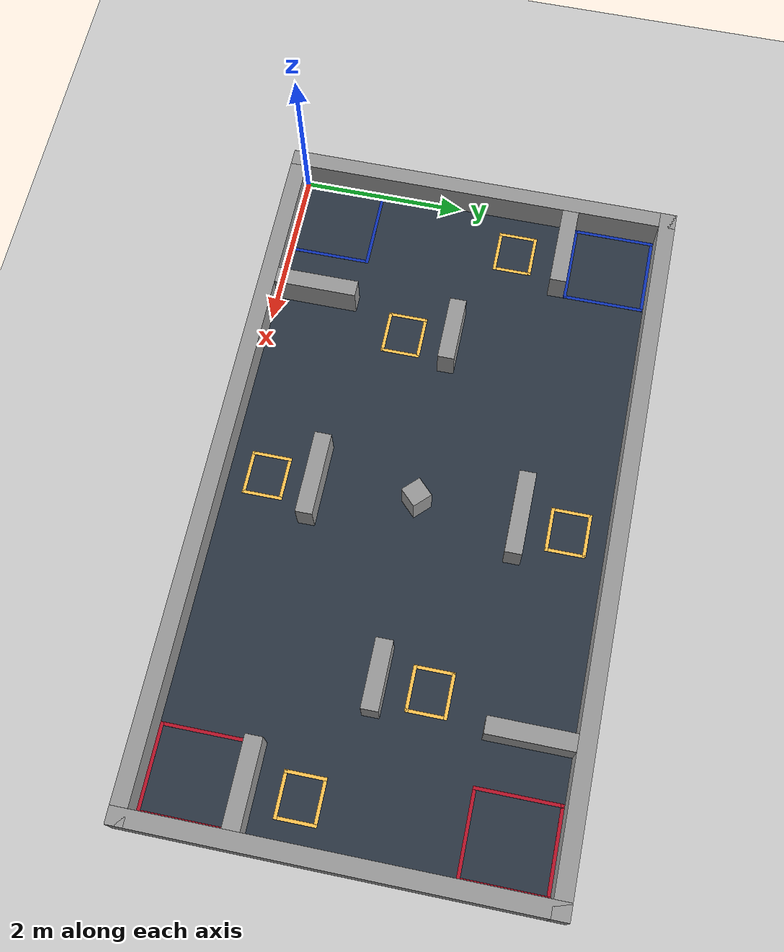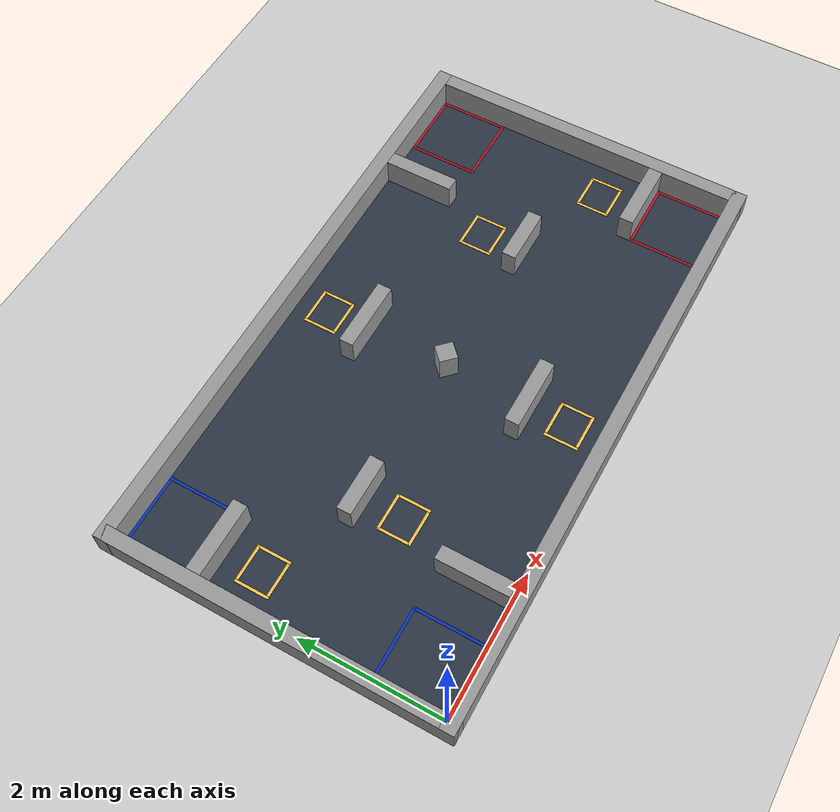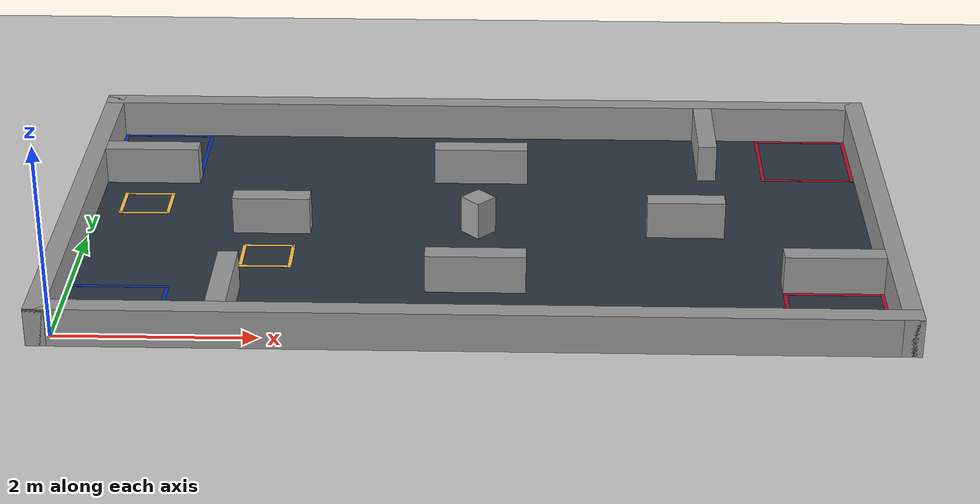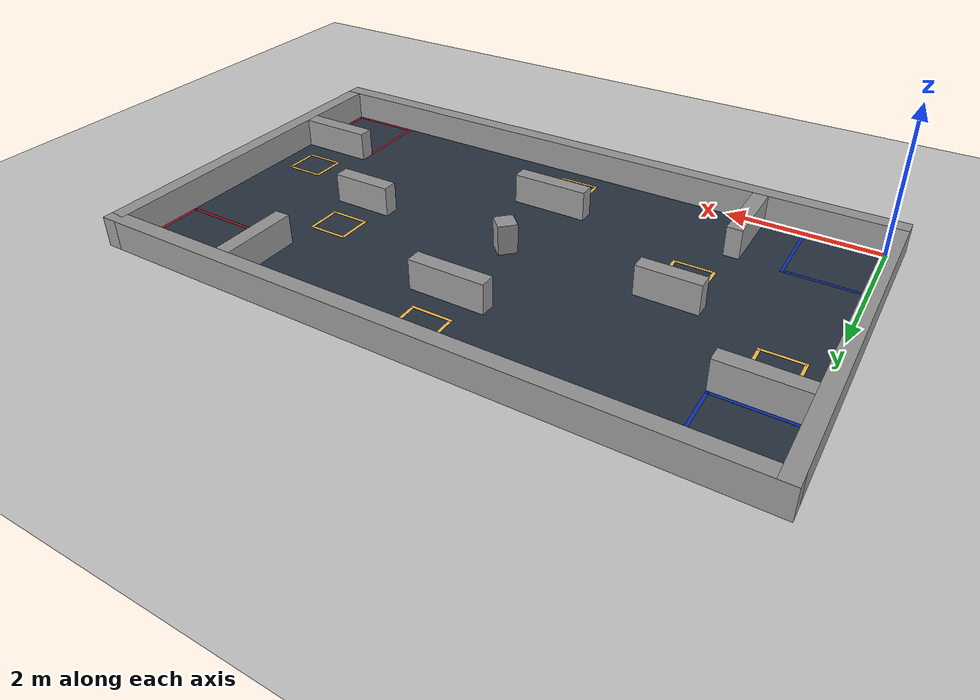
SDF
<sdf version="1.6">
 <world name="default">
  <light name="sun" type="directional">
   <pose>0 0 10 0 -0 0</pose>
   <diffuse>0.8 0.8 0.8 1</diffuse>
   <specular>0.1 0.1 0.1 1</specular>
   <attenuation>
    <range>1000</range>
    <constant>0.9</constant>
    <linear>0.01</linear>
    <quadratic>0.001</quadratic>
   </attenuation>
   <direction>-0.5 0.5 -1</direction>
  </light>
  <model name="ground_plane">
   <static>1</static>
   <link name="link">
    <collision name="collision">
     <geometry><plane><normal>0 0 1</normal><size>100 100</size></plane></geometry>
     <surface><friction><ode><mu>100</mu><mu2>50</mu2></ode></friction></surface>
    </collision>
    <visual name="visual">
     <cast_shadows>0</cast_shadows>
     <geometry><plane><normal>0 0 1</normal><size>100 100</size></plane></geometry>
     <material>
      <script><uri>file://media/materials/scripts/gazebo.material</uri><name>Gazebo/Grey</name></script>
     </material>
    </visual>
   </link>
  </model>
  <gravity>0 0 -9.8</gravity>
  <magnetic_field>6e-06 2.3e-05 -4.2e-05</magnetic_field>
  <atmosphere type="adiabatic"/>
  <physics name="default_physics" default="0" type="ode">
   <max_step_size>0.001</max_step_size>
   <real_time_factor>1</real_time_factor>
   <real_time_update_rate>1000</real_time_update_rate>
  </physics>
  <scene><ambient>0.4 0.4 0.4 1</ambient><background>0.7 0.7 0.7 1</background><shadows>1</shadows></scene>
  <spherical_coordinates>
   <surface_model>EARTH_WGS84</surface_model>
   <latitude_deg>0</latitude_deg>
   <longitude_deg>0</longitude_deg>
   <elevation>0</elevation>
   <heading_deg>0</heading_deg>
  </spherical_coordinates>
  <model name="new_icra">
   <pose>4.04 2.24 0 0 -0 0</pose>
   <link name="Wall_0">
    <collision name="Wall_0_Collision">
     <geometry><box><size>8.08 4.48 0.002</size></box></geometry>
     <pose>0 0 0.001 0 -0 0</pose>
    </collision>
    <visual name="Wall_0_Visual">
     <pose>0 0 0.001 0 -0 0</pose>
     <geometry><box><size>8.08 4.48 0.001</size></box></geometry>
     <material>
      <script><uri>file://media/materials/scripts/gazebo.material</uri><name>Gazebo/Grey</name></script>
      <ambient>0.164706 0.207843 0.258824 1</ambient>
     </material>
    </visual>
   </link>
   <link name="Wall_11">
    <collision name="Wall_11_Collision">
     <geometry><box><size>0.8 0.2 0.4</size></box></geometry>
     <pose>0 0 0.2 0 -0 0</pose>
    </collision>
    <visual name="Wall_11_Visual">
     <pose>0 0 0.2 0 -0 0</pose>
     <geometry><box><size>0.8 0.2 0.4</size></box></geometry>
     <material>
      <script><uri>file://media/materials/scripts/gazebo.material</uri><name>Gazebo/Grey</name></script>
      <ambient>1 1 1 1</ambient>
     </material>
    </visual>
    <pose>-2.14 0 0 0 -0 0</pose>
   </link>
   <link name="Wall_13">
    <collision name="Wall_13_Collision">
     <geometry><box><size>1 0.2 0.4</size></box></geometry>
     <pose>0 0 0.2 0 -0 0</pose>
    </collision>
    <visual name="Wall_13_Visual">
     <pose>0 0 0.2 0 -0 0</pose>
     <geometry><box><size>1 0.2 0.4</size></box></geometry>
     <material>
      <script><uri>file://media/materials/scripts/gazebo.material</uri><name>Gazebo/Grey</name></script>
      <ambient>1 1 1 1</ambient>
     </material>
    </visual>
    <pose>0 -1.205 0 0 -0 0</pose>
   </link>
   <link name="Wall_add">
    <collision name="Wall_add1_Collision">
     <geometry><box><size>0.25 0.25 0.4</size></box></geometry>
     <pose>0 0 0.2 0 -0 0</pose>
    </collision>
    <visual name="Wall_add_Visual">
     <pose>0 0 0.2 0 -0 0</pose>
     <geometry><box><size>0.25 0.25 0.4</size></box></geometry>
     <material>
      <script><uri>file://media/materials/scripts/gazebo.material</uri><name>Gazebo/Grey</name></script>
      <ambient>1 1 1 1</ambient>
     </material>
    </visual>
    <pose>0 0 0 0 -0 0.785398</pose>
   </link>
   <link name="Wall_15">
    <collision name="Wall_15_Collision">
     <geometry><box><size>1 0.2 0.4</size></box></geometry>
     <pose>0 0 0.2 0 -0 0</pose>
    </collision>
    <visual name="Wall_15_Visual">
     <pose>0 0 0.2 0 -0 0</pose>
     <geometry><box><size>1 0.2 0.4</size></box></geometry>
     <material>
      <script><uri>file://media/materials/scripts/gazebo.material</uri><name>Gazebo/Grey</name></script>
      <ambient>1 1 1 1</ambient>
     </material>
    </visual>
    <pose>0 1.205 0 0 -0 0</pose>
   </link>
   <link name="Wall_17">
    <collision name="Wall_17_Collision">
     <geometry><box><size>1 0.2 0.4</size></box></geometry>
     <pose>0 0 0.2 0 -0 0</pose>
    </collision>
    <visual name="Wall_17_Visual">
     <pose>0 0 0.2 0 -0 0</pose>
     <geometry><box><size>1 0.2 0.4</size></box></geometry>
     <material>
      <script><uri>file://media/materials/scripts/gazebo.material</uri><name>Gazebo/Grey</name></script>
      <ambient>1 1 1 1</ambient>
     </material>
    </visual>
    <pose>2.44 1.74 0 0 0 -1.5708</pose>
   </link>
   <link name="Wall_19">
    <collision name="Wall_19_Collision">
     <geometry><box><size>1 0.2 0.4</size></box></geometry>
     <pose>0 0 0.2 0 -0 0</pose>
    </collision>
    <visual name="Wall_19_Visual">
     <pose>0 0 0.2 0 -0 0</pose>
     <geometry><box><size>1 0.2 0.4</size></box></geometry>
     <material>
      <script><uri>file://media/materials/scripts/gazebo.material</uri><name>Gazebo/Grey</name></script>
      <ambient>1 1 1 1</ambient>
     </material>
    </visual>
    <pose>3.54 -1.14 0 0 -0 0</pose>
   </link>
   <link name="Wall_2">
    <collision name="Wall_2_Collision">
     <geometry><box><size>4.88 0.2 0.4</size></box></geometry>
     <pose>0 0 0.2 0 -0 0</pose>
    </collision>
    <visual name="Wall_2_Visual">
     <pose>0 0 0.2 0 -0 0</pose>
     <geometry><box><size>4.88 0.2 0.4</size></box></geometry>
     <material>
      <script><uri>file://media/materials/scripts/gazebo.material</uri><name>Gazebo/Grey</name></script>
      <ambient>1 1 1 1</ambient>
     </material>
    </visual>
    <pose>-4.14 0 0 0 0 -1.5708</pose>
   </link>
   <link name="Wall_21">
    <collision name="Wall_21_Collision">
     <geometry><box><size>0.8 0.2 0.4</size></box></geometry>
     <pose>0 0 0.2 0 -0 0</pose>
    </collision>
    <visual name="Wall_21_Visual">
     <pose>0 0 0.2 0 -0 0</pose>
     <geometry><box><size>0.8 0.2 0.4</size></box></geometry>
     <material>
      <script><uri>file://media/materials/scripts/gazebo.material</uri><name>Gazebo/Grey</name></script>
      <ambient>1 1 1 1</ambient>
     </material>
    </visual>
    <pose>2.14 0 0 0 -0 0</pose>
   </link>
   <link name="Wall_23">
    <collision name="Wall_23_Collision">
     <geometry><box><size>0.48 0.04 0.002</size></box></geometry>
     <pose>0 0 0.001 0 -0 0</pose>
    </collision>
    <visual name="Wall_23_Visual">
     <pose>0 0 0.001 0 -0 0</pose>
     <geometry><box><size>0.48 0.04 0.002</size></box></geometry>
     <material>
      <script><uri>file://media/materials/scripts/gazebo.material</uri><name>Gazebo/Grey</name></script>
      <ambient>1 0.764706 0.305882 1</ambient>
     </material>
    </visual>
    <pose>-3.79 0.55 0 0 0 -1.5708</pose>
   </link>
   <link name="Wall_24">
    <collision name="Wall_24_Collision">
     <geometry><box><size>0.54 0.04 0.002</size></box></geometry>
     <pose>0 0 0.001 0 -0 0</pose>
    </collision>
    <visual name="Wall_24_Visual">
     <pose>0 0 0.001 0 -0 0</pose>
     <geometry><box><size>0.54 0.04 0.002</size></box></geometry>
     <material>
      <script><uri>file://media/materials/scripts/gazebo.material</uri><name>Gazebo/Grey</name></script>
      <ambient>1 0.764706 0.305882 1</ambient>
     </material>
    </visual>
    <pose>-3.54 0.33 0 0 -0 0</pose>
   </link>
   <link name="Wall_25">
    <collision name="Wall_25_Collision">
     <geometry><box><size>0.48 0.04 0.002</size></box></geometry>
     <pose>0 0 0.001 0 -0 0</pose>
    </collision>
    <visual name="Wall_25_Visual">
     <pose>0 0 0.001 0 -0 0</pose>
     <geometry><box><size>0.48 0.04 0.002</size></box></geometry>
     <material>
      <script><uri>file://media/materials/scripts/gazebo.material</uri><name>Gazebo/Grey</name></script>
      <ambient>1 0.764706 0.305882 1</ambient>
     </material>
    </visual>
    <pose>-3.29 0.55 0 0 -0 1.5708</pose>
   </link>
   <link name="Wall_26">
    <collision name="Wall_26_Collision">
     <geometry><box><size>0.54 0.04 0.002</size></box></geometry>
     <pose>0 0 0.001 0 -0 0</pose>
    </collision>
    <visual name="Wall_26_Visual">
     <pose>0 0 0.001 0 -0 0</pose>
     <geometry><box><size>0.54 0.04 0.002</size></box></geometry>
     <material>
      <script><uri>file://media/materials/scripts/gazebo.material</uri><name>Gazebo/Grey</name></script>
      <ambient>1 0.764706 0.305882 1</ambient>
     </material>
    </visual>
    <pose>-3.54 0.77 0 0 -0 3.14159</pose>
   </link>
   <link name="Wall_28">
    <collision name="Wall_28_Collision">
     <geometry><box><size>0.48 0.04 0.002</size></box></geometry>
     <pose>0 0 0.001 0 -0 0</pose>
    </collision>
    <visual name="Wall_28_Visual">
     <pose>0 0 0.001 0 -0 0</pose>
     <geometry><box><size>0.48 0.04 0.002</size></box></geometry>
     <material>
      <script><uri>file://media/materials/scripts/gazebo.material</uri><name>Gazebo/Grey</name></script>
      <ambient>1 0.764706 0.305882 1</ambient>
     </material>
    </visual>
    <pose>-2.39 -0.59 0 0 0 -1.5708</pose>
   </link>
   <link name="Wall_29">
    <collision name="Wall_29_Collision">
     <geometry><box><size>0.54 0.04 0.002</size></box></geometry>
     <pose>0 0 0.001 0 -0 0</pose>
    </collision>
    <visual name="Wall_29_Visual">
     <pose>0 0 0.001 0 -0 0</pose>
     <geometry><box><size>0.54 0.04 0.002</size></box></geometry>
     <material>
      <script><uri>file://media/materials/scripts/gazebo.material</uri><name>Gazebo/Grey</name></script>
      <ambient>1 0.764706 0.305882 1</ambient>
     </material>
    </visual>
    <pose>-2.14 -0.81 0 0 -0 0</pose>
   </link>
   <link name="Wall_3">
    <collision name="Wall_3_Collision">
     <geometry><box><size>8.48 0.2 0.4</size></box></geometry>
     <pose>0 0 0.2 0 -0 0</pose>
    </collision>
    <visual name="Wall_3_Visual">
     <pose>0 0 0.2 0 -0 0</pose>
     <geometry><box><size>8.48 0.2 0.4</size></box></geometry>
     <material>
      <script><uri>file://media/materials/scripts/gazebo.material</uri><name>Gazebo/Grey</name></script>
      <ambient>1 1 1 1</ambient>
     </material>
    </visual>
    <pose>0 -2.34 0 0 -0 0</pose>
   </link>
   <link name="Wall_30">
    <collision name="Wall_30_Collision">
     <geometry><box><size>0.48 0.04 0.002</size></box></geometry>
     <pose>0 0 0.001 0 -0 0</pose>
    </collision>
    <visual name="Wall_30_Visual">
     <pose>0 0 0.001 0 -0 0</pose>
     <geometry><box><size>0.48 0.04 0.002</size></box></geometry>
     <material>
      <script><uri>file://media/materials/scripts/gazebo.material</uri><name>Gazebo/Grey</name></script>
      <ambient>1 0.764706 0.305882 1</ambient>
     </material>
    </visual>
    <pose>-1.89 -0.59 0 0 -0 1.5708</pose>
   </link>
   <link name="Wall_31">
    <collision name="Wall_31_Collision">
     <geometry><box><size>0.54 0.04 0.002</size></box></geometry>
     <pose>0 0 0.001 0 -0 0</pose>
    </collision>
    <visual name="Wall_31_Visual">
     <pose>0 0 0.001 0 -0 0</pose>
     <geometry><box><size>0.54 0.04 0.002</size></box></geometry>
     <material>
      <script><uri>file://media/materials/scripts/gazebo.material</uri><name>Gazebo/Grey</name></script>
      <ambient>1 0.764706 0.305882 1</ambient>
     </material>
    </visual>
    <pose>-2.14 -0.37 0 0 -0 3.14159</pose>
   </link>
   <link name="Wall_33">
    <collision name="Wall_33_Collision">
     <geometry><box><size>0.48 0.04 0.002</size></box></geometry>
     <pose>0 0 0.001 0 -0 0</pose>
    </collision>
    <visual name="Wall_33_Visual">
     <pose>0 0 0.001 0 -0 0</pose>
     <geometry><box><size>0.48 0.04 0.002</size></box></geometry>
     <material>
      <script><uri>file://media/materials/scripts/gazebo.material</uri><name>Gazebo/Grey</name></script>
      <ambient>1 0.764706 0.305882 1</ambient>
     </material>
    </visual>
    <pose>-0.25 1.795 0 0 0 -1.5708</pose>
   </link>
   <link name="Wall_34">
    <collision name="Wall_34_Collision">
     <geometry><box><size>0.54 0.04 0.002</size></box></geometry>
     <pose>0 0 0.001 0 -0 0</pose>
    </collision>
    <visual name="Wall_34_Visual">
     <pose>0 0 0.001 0 -0 0</pose>
     <geometry><box><size>0.54 0.04 0.002</size></box></geometry>
     <material>
      <script><uri>file://media/materials/scripts/gazebo.material</uri><name>Gazebo/Grey</name></script>
      <ambient>1 0.764706 0.305882 1</ambient>
     </material>
    </visual>
    <pose>0 1.575 0 0 -0 0</pose>
   </link>
   <link name="Wall_35">
    <collision name="Wall_35_Collision">
     <geometry><box><size>0.48 0.04 0.002</size></box></geometry>
     <pose>0 0 0.001 0 -0 0</pose>
    </collision>
    <visual name="Wall_35_Visual">
     <pose>0 0 0.001 0 -0 0</pose>
     <geometry><box><size>0.48 0.04 0.002</size></box></geometry>
     <material>
      <script><uri>file://media/materials/scripts/gazebo.material</uri><name>Gazebo/Grey</name></script>
      <ambient>1 0.764706 0.305882 1</ambient>
     </material>
    </visual>
    <pose>0.25 1.795 0 0 -0 1.5708</pose>
   </link>
   <link name="Wall_36">
    <collision name="Wall_36_Collision">
     <geometry><box><size>0.54 0.04 0.002</size></box></geometry>
     <pose>0 0 0.001 0 -0 0</pose>
    </collision>
    <visual name="Wall_36_Visual">
     <pose>0 0 0.001 0 -0 0</pose>
     <geometry><box><size>0.54 0.04 0.002</size></box></geometry>
     <material>
      <script><uri>file://media/materials/scripts/gazebo.material</uri><name>Gazebo/Grey</name></script>
      <ambient>1 0.764706 0.305882 1</ambient>
     </material>
    </visual>
    <pose>0 2.015 0 0 -0 3.14159</pose>
   </link>
   <link name="Wall_4">
    <collision name="Wall_4_Collision">
     <geometry><box><size>4.88 0.2 0.4</size></box></geometry>
     <pose>0 0 0.2 0 -0 0</pose>
    </collision>
    <visual name="Wall_4_Visual">
     <pose>0 0 0.2 0 -0 0</pose>
     <geometry><box><size>4.88 0.2 0.4</size></box></geometry>
     <material>
      <script><uri>file://media/materials/scripts/gazebo.material</uri><name>Gazebo/Grey</name></script>
      <ambient>1 1 1 1</ambient>
     </material>
    </visual>
    <pose>4.14 0 0 0 -0 1.5708</pose>
   </link>
   <link name="Wall_42">
    <collision name="Wall_42_Collision">
     <geometry><box><size>0.48 0.04 0.002</size></box></geometry>
     <pose>0 0 0.001 0 -0 0</pose>
    </collision>
    <visual name="Wall_42_Visual">
     <pose>0 0 0.001 0 -0 0</pose>
     <geometry><box><size>0.48 0.04 0.002</size></box></geometry>
     <material>
      <script><uri>file://media/materials/scripts/gazebo.material</uri><name>Gazebo/Grey</name></script>
      <ambient>1 0.764706 0.305882 1</ambient>
     </material>
    </visual>
    <pose>-0.25 -1.795 0 0 0 -1.5708</pose>
   </link>
   <link name="Wall_43">
    <collision name="Wall_43_Collision">
     <geometry><box><size>0.54 0.04 0.002</size></box></geometry>
     <pose>0 0 0.001 0 -0 0</pose>
    </collision>
    <visual name="Wall_43_Visual">
     <pose>0 0 0.001 0 -0 0</pose>
     <geometry><box><size>0.54 0.04 0.002</size></box></geometry>
     <material>
      <script><uri>file://media/materials/scripts/gazebo.material</uri><name>Gazebo/Grey</name></script>
      <ambient>1 0.764706 0.305882 1</ambient>
     </material>
    </visual>
    <pose>0 -2.015 0 0 -0 0</pose>
   </link>
   <link name="Wall_46">
    <collision name="Wall_46_Collision">
     <geometry><box><size>0.48 0.04 0.002</size></box></geometry>
     <pose>0 0 0.001 0 -0 0</pose>
    </collision>
    <visual name="Wall_46_Visual">
     <pose>0 0 0.001 0 -0 0</pose>
     <geometry><box><size>0.48 0.04 0.002</size></box></geometry>
     <material>
      <script><uri>file://media/materials/scripts/gazebo.material</uri><name>Gazebo/Grey</name></script>
      <ambient>1 0.764706 0.305882 1</ambient>
     </material>
    </visual>
    <pose>0.25 -1.795 0 0 -0 1.5708</pose>
   </link>
   <link name="Wall_47">
    <collision name="Wall_47_Collision">
     <geometry><box><size>0.54 0.04 0.002</size></box></geometry>
     <pose>0 0 0.001 0 -0 0</pose>
    </collision>
    <visual name="Wall_47_Visual">
     <pose>0 0 0.001 0 -0 0</pose>
     <geometry><box><size>0.54 0.04 0.002</size></box></geometry>
     <material>
      <script><uri>file://media/materials/scripts/gazebo.material</uri><name>Gazebo/Grey</name></script>
      <ambient>1 0.764706 0.305882 1</ambient>
     </material>
    </visual>
    <pose>0 -1.575 0 0 -0 3.14159</pose>
   </link>
   <link name="Wall_49">
    <collision name="Wall_49_Collision">
     <geometry><box><size>0.48 0.04 0.002</size></box></geometry>
     <pose>0 0 0.001 0 -0 0</pose>
    </collision>
    <visual name="Wall_49_Visual">
     <pose>0 0 0.001 0 -0 0</pose>
     <geometry><box><size>0.48 0.04 0.002</size></box></geometry>
     <material>
      <script><uri>file://media/materials/scripts/gazebo.material</uri><name>Gazebo/Grey</name></script>
      <ambient>1 0.764706 0.305882 1</ambient>
     </material>
    </visual>
    <pose>1.89 0.59 0 0 -0 1.5708</pose>
   </link>
   <link name="Wall_5">
    <collision name="Wall_5_Collision">
     <geometry><box><size>8.48 0.2 0.4</size></box></geometry>
     <pose>0 0 0.2 0 -0 0</pose>
    </collision>
    <visual name="Wall_5_Visual">
     <pose>0 0 0.2 0 -0 0</pose>
     <geometry><box><size>8.48 0.2 0.4</size></box></geometry>
     <material>
      <script><uri>file://media/materials/scripts/gazebo.material</uri><name>Gazebo/Grey</name></script>
      <ambient>1 1 1 1</ambient>
     </material>
    </visual>
    <pose>0 2.34 0 0 -0 3.14159</pose>
   </link>
   <link name="Wall_50">
    <collision name="Wall_50_Collision">
     <geometry><box><size>0.54 0.04 0.002</size></box></geometry>
     <pose>0 0 0.001 0 -0 0</pose>
    </collision>
    <visual name="Wall_50_Visual">
     <pose>0 0 0.001 0 -0 0</pose>
     <geometry><box><size>0.54 0.04 0.002</size></box></geometry>
     <material>
      <script><uri>file://media/materials/scripts/gazebo.material</uri><name>Gazebo/Grey</name></script>
      <ambient>1 0.764706 0.305882 1</ambient>
     </material>
    </visual>
    <pose>2.14 0.81 0 0 -0 0</pose>
   </link>
   <link name="Wall_51">
    <collision name="Wall_51_Collision">
     <geometry><box><size>0.48 0.04 0.002</size></box></geometry>
     <pose>0 0 0.001 0 -0 0</pose>
    </collision>
    <visual name="Wall_51_Visual">
     <pose>0 0 0.001 0 -0 0</pose>
     <geometry><box><size>0.48 0.04 0.002</size></box></geometry>
     <material>
      <script><uri>file://media/materials/scripts/gazebo.material</uri><name>Gazebo/Grey</name></script>
      <ambient>1 0.764706 0.305882 1</ambient>
     </material>
    </visual>
    <pose>2.39 0.59 0 0 0 -1.5708</pose>
   </link>
   <link name="Wall_52">
    <collision name="Wall_52_Collision">
     <geometry><box><size>0.54 0.04 0.002</size></box></geometry>
     <pose>0 0 0.001 0 -0 0</pose>
    </collision>
    <visual name="Wall_52_Visual">
     <pose>0 0 0.001 0 -0 0</pose>
     <geometry><box><size>0.54 0.04 0.002</size></box></geometry>
     <material>
      <script><uri>file://media/materials/scripts/gazebo.material</uri><name>Gazebo/Grey</name></script>
      <ambient>1 0.764706 0.305882 1</ambient>
     </material>
    </visual>
    <pose>2.14 0.37 0 0 -0 3.14159</pose>
   </link>
   <link name="Wall_54">
    <collision name="Wall_54_Collision">
     <geometry><box><size>0.48 0.04 0.002</size></box></geometry>
     <pose>0 0 0.001 0 -0 0</pose>
    </collision>
    <visual name="Wall_54_Visual">
     <pose>0 0 0.001 0 -0 0</pose>
     <geometry><box><size>0.48 0.04 0.002</size></box></geometry>
     <material>
      <script><uri>file://media/materials/scripts/gazebo.material</uri><name>Gazebo/Grey</name></script>
      <ambient>1 0.764706 0.305882 1</ambient>
     </material>
    </visual>
    <pose>3.29 -0.55 0 0 0 -1.5708</pose>
   </link>
   <link name="Wall_55">
    <collision name="Wall_55_Collision">
     <geometry><box><size>0.54 0.04 0.002</size></box></geometry>
     <pose>0 0 0.001 0 -0 0</pose>
    </collision>
    <visual name="Wall_55_Visual">
     <pose>0 0 0.001 0 -0 0</pose>
     <geometry><box><size>0.54 0.04 0.002</size></box></geometry>
     <material>
      <script><uri>file://media/materials/scripts/gazebo.material</uri><name>Gazebo/Grey</name></script>
      <ambient>1 0.764706 0.305882 1</ambient>
     </material>
    </visual>
    <pose>3.54 -0.77 0 0 -0 0</pose>
   </link>
   <link name="Wall_56">
    <collision name="Wall_56_Collision">
     <geometry><box><size>0.48 0.04 0.002</size></box></geometry>
     <pose>0 0 0.001 0 -0 0</pose>
    </collision>
    <visual name="Wall_56_Visual">
     <pose>0 0 0.001 0 -0 0</pose>
     <geometry><box><size>0.48 0.04 0.002</size></box></geometry>
     <material>
      <script><uri>file://media/materials/scripts/gazebo.material</uri><name>Gazebo/Grey</name></script>
      <ambient>1 0.764706 0.305882 1</ambient>
     </material>
    </visual>
    <pose>3.79 -0.55 0 0 -0 1.5708</pose>
   </link>
   <link name="Wall_57">
    <collision name="Wall_57_Collision">
     <geometry><box><size>0.54 0.04 0.002</size></box></geometry>
     <pose>0 0 0.001 0 -0 0</pose>
    </collision>
    <visual name="Wall_57_Visual">
     <pose>0 0 0.001 0 -0 0</pose>
     <geometry><box><size>0.54 0.04 0.002</size></box></geometry>
     <material>
      <script><uri>file://media/materials/scripts/gazebo.material</uri><name>Gazebo/Grey</name></script>
      <ambient>1 0.764706 0.305882 1</ambient>
     </material>
    </visual>
    <pose>3.54 -0.33 0 0 -0 3.14159</pose>
   </link>
   <link name="Wall_59">
    <collision name="Wall_59_Collision">
     <geometry><box><size>1 0.04 0.002</size></box></geometry>
     <pose>0 0 0.001 0 -0 0</pose>
    </collision>
    <visual name="Wall_59_Visual">
     <pose>0 0 0.001 0 -0 0</pose>
     <geometry><box><size>1 0.04 0.002</size></box></geometry>
     <material>
      <script><uri>file://media/materials/scripts/gazebo.material</uri><name>Gazebo/Grey</name></script>
      <ambient>0.054902 0.196078 0.705882 1</ambient>
     </material>
    </visual>
    <pose>-4.02 -1.74 0 0 0 -1.5708</pose>
   </link>
   <link name="Wall_60">
    <collision name="Wall_60_Collision">
     <geometry><box><size>1 0.04 0.002</size></box></geometry>
     <pose>0 0 0.001 0 -0 0</pose>
    </collision>
    <visual name="Wall_60_Visual">
     <pose>0 0 0.001 0 -0 0</pose>
     <geometry><box><size>1 0.04 0.002</size></box></geometry>
     <material>
      <script><uri>file://media/materials/scripts/gazebo.material</uri><name>Gazebo/Grey</name></script>
      <ambient>0.054902 0.196078 0.705882 1</ambient>
     </material>
    </visual>
    <pose>-3.54 -2.22 0 0 -0 0</pose>
   </link>
   <link name="Wall_61">
    <collision name="Wall_61_Collision">
     <geometry><box><size>1 0.04 0.002</size></box></geometry>
     <pose>0 0 0.001 0 -0 0</pose>
    </collision>
    <visual name="Wall_61_Visual">
     <pose>0 0 0.001 0 -0 0</pose>
     <geometry><box><size>1 0.04 0.002</size></box></geometry>
     <material>
      <script><uri>file://media/materials/scripts/gazebo.material</uri><name>Gazebo/Grey</name></script>
      <ambient>0.054902 0.196078 0.705882 1</ambient>
     </material>
    </visual>
    <pose>-3.06 -1.74 0 0 -0 1.5708</pose>
   </link>
   <link name="Wall_62">
    <collision name="Wall_62_Collision">
     <geometry><box><size>1 0.04 0.002</size></box></geometry>
     <pose>0 0 0.001 0 -0 0</pose>
    </collision>
    <visual name="Wall_62_Visual">
     <pose>0 0 0.001 0 -0 0</pose>
     <geometry><box><size>1 0.04 0.002</size></box></geometry>
     <material>
      <script><uri>file://media/materials/scripts/gazebo.material</uri><name>Gazebo/Grey</name></script>
      <ambient>0.054902 0.196078 0.705882 1</ambient>
     </material>
    </visual>
    <pose>-3.54 -1.26 0 0 -0 3.14159</pose>
   </link>
   <link name="Wall_64">
    <collision name="Wall_64_Collision">
     <geometry><box><size>1 0.04 0.002</size></box></geometry>
     <pose>0 0 0.001 0 -0 0</pose>
    </collision>
    <visual name="Wall_64_Visual">
     <pose>0 0 0.001 0 -0 0</pose>
     <geometry><box><size>1 0.04 0.002</size></box></geometry>
     <material>
      <script><uri>file://media/materials/scripts/gazebo.material</uri><name>Gazebo/Grey</name></script>
      <ambient>0.054902 0.2 0.709804 1</ambient>
     </material>
    </visual>
    <pose>-4.02 1.74 0 0 0 -1.5708</pose>
   </link>
   <link name="Wall_65">
    <collision name="Wall_65_Collision">
     <geometry><box><size>1 0.04 0.002</size></box></geometry>
     <pose>0 0 0.001 0 -0 0</pose>
    </collision>
    <visual name="Wall_65_Visual">
     <pose>0 0 0.001 0 -0 0</pose>
     <geometry><box><size>1 0.04 0.002</size></box></geometry>
     <material>
      <script><uri>file://media/materials/scripts/gazebo.material</uri><name>Gazebo/Grey</name></script>
      <ambient>0.054902 0.2 0.709804 1</ambient>
     </material>
    </visual>
    <pose>-3.54 1.26 0 0 -0 0</pose>
   </link>
   <link name="Wall_66">
    <collision name="Wall_66_Collision">
     <geometry><box><size>1 0.04 0.002</size></box></geometry>
     <pose>0 0 0.001 0 -0 0</pose>
    </collision>
    <visual name="Wall_66_Visual">
     <pose>0 0 0.001 0 -0 0</pose>
     <geometry><box><size>1 0.04 0.002</size></box></geometry>
     <material>
      <script><uri>file://media/materials/scripts/gazebo.material</uri><name>Gazebo/Grey</name></script>
      <ambient>0.054902 0.2 0.709804 1</ambient>
     </material>
    </visual>
    <pose>-3.06 1.74 0 0 -0 1.5708</pose>
   </link>
   <link name="Wall_67">
    <collision name="Wall_67_Collision">
     <geometry><box><size>1 0.04 0.002</size></box></geometry>
     <pose>0 0 0.001 0 -0 0</pose>
    </collision>
    <visual name="Wall_67_Visual">
     <pose>0 0 0.001 0 -0 0</pose>
     <geometry><box><size>1 0.04 0.002</size></box></geometry>
     <material>
      <script><uri>file://media/materials/scripts/gazebo.material</uri><name>Gazebo/Grey</name></script>
      <ambient>0.054902 0.2 0.709804 1</ambient>
     </material>
    </visual>
    <pose>-3.54 2.22 0 0 -0 3.14159</pose>
   </link>
   <link name="Wall_69">
    <collision name="Wall_69_Collision">
     <geometry><box><size>1 0.04 0.002</size></box></geometry>
     <pose>0 0 0.001 0 -0 0</pose>
    </collision>
    <visual name="Wall_69_Visual">
     <pose>0 0 0.001 0 -0 0</pose>
     <geometry><box><size>1 0.04 0.002</size></box></geometry>
     <material>
      <script><uri>file://media/materials/scripts/gazebo.material</uri><name>Gazebo/Grey</name></script>
      <ambient>0.709804 0.0705882 0.156863 1</ambient>
     </material>
    </visual>
    <pose>3.06 1.74 0 0 0 -1.5708</pose>
   </link>
   <link name="Wall_7">
    <collision name="Wall_7_Collision">
     <geometry><box><size>1 0.2 0.4</size></box></geometry>
     <pose>0 0 0.2 0 -0 0</pose>
    </collision>
    <visual name="Wall_7_Visual">
     <pose>0 0 0.2 0 -0 0</pose>
     <geometry><box><size>1 0.2 0.4</size></box></geometry>
     <material>
      <script><uri>file://media/materials/scripts/gazebo.material</uri><name>Gazebo/Grey</name></script>
      <ambient>1 1 1 1</ambient>
     </material>
    </visual>
    <pose>-2.44 -1.74 0 0 -0 1.5708</pose>
   </link>
   <link name="Wall_70">
    <collision name="Wall_70_Collision">
     <geometry><box><size>1 0.04 0.002</size></box></geometry>
     <pose>0 0 0.001 0 -0 0</pose>
    </collision>
    <visual name="Wall_70_Visual">
     <pose>0 0 0.001 0 -0 0</pose>
     <geometry><box><size>1 0.04 0.002</size></box></geometry>
     <material>
      <script><uri>file://media/materials/scripts/gazebo.material</uri><name>Gazebo/Grey</name></script>
      <ambient>0.709804 0.0705882 0.156863 1</ambient>
     </material>
    </visual>
    <pose>3.54 1.26 0 0 -0 0</pose>
   </link>
   <link name="Wall_71">
    <collision name="Wall_71_Collision">
     <geometry><box><size>1 0.04 0.002</size></box></geometry>
     <pose>0 0 0.001 0 -0 0</pose>
    </collision>
    <visual name="Wall_71_Visual">
     <pose>0 0 0.001 0 -0 0</pose>
     <geometry><box><size>1 0.04 0.002</size></box></geometry>
     <material>
      <script><uri>file://media/materials/scripts/gazebo.material</uri><name>Gazebo/Grey</name></script>
      <ambient>0.709804 0.0705882 0.156863 1</ambient>
     </material>
    </visual>
    <pose>4.02 1.74 0 0 -0 1.5708</pose>
   </link>
   <link name="Wall_72">
    <collision name="Wall_72_Collision">
     <geometry><box><size>1 0.04 0.002</size></box></geometry>
     <pose>0 0 0.001 0 -0 0</pose>
    </collision>
    <visual name="Wall_72_Visual">
     <pose>0 0 0.001 0 -0 0</pose>
     <geometry><box><size>1 0.04 0.002</size></box></geometry>
     <material>
      <script><uri>file://media/materials/scripts/gazebo.material</uri><name>Gazebo/Grey</name></script>
      <ambient>0.709804 0.0705882 0.156863 1</ambient>
     </material>
    </visual>
    <pose>3.54 2.22 0 0 -0 3.14159</pose>
   </link>
   <link name="Wall_74">
    <collision name="Wall_74_Collision">
     <geometry><box><size>1 0.04 0.002</size></box></geometry>
     <pose>0 0 0.001 0 -0 0</pose>
    </collision>
    <visual name="Wall_74_Visual">
     <pose>0 0 0.001 0 -0 0</pose>
     <geometry><box><size>1 0.04 0.002</size></box></geometry>
     <material>
      <script><uri>file://media/materials/scripts/gazebo.material</uri><name>Gazebo/Grey</name></script>
      <ambient>0.709804 0.0705882 0.156863 1</ambient>
     </material>
    </visual>
    <pose>3.06 -1.74 0 0 0 -1.5708</pose>
   </link>
   <link name="Wall_75">
    <collision name="Wall_75_Collision">
     <geometry><box><size>1 0.04 0.002</size></box></geometry>
     <pose>0 0 0.001 0 -0 0</pose>
    </collision>
    <visual name="Wall_75_Visual">
     <pose>0 0 0.001 0 -0 0</pose>
     <geometry><box><size>1 0.04 0.002</size></box></geometry>
     <material>
      <script><uri>file://media/materials/scripts/gazebo.material</uri><name>Gazebo/Grey</name></script>
      <ambient>0.709804 0.0705882 0.156863 1</ambient>
     </material>
    </visual>
    <pose>3.54 -2.22 0 0 -0 0</pose>
   </link>
   <link name="Wall_76">
    <collision name="Wall_76_Collision">
     <geometry><box><size>1 0.04 0.002</size></box></geometry>
     <pose>0 0 0.001 0 -0 0</pose>
    </collision>
    <visual name="Wall_76_Visual">
     <pose>0 0 0.001 0 -0 0</pose>
     <geometry><box><size>1 0.04 0.002</size></box></geometry>
     <material>
      <script><uri>file://media/materials/scripts/gazebo.material</uri><name>Gazebo/Grey</name></script>
      <ambient>0.709804 0.0705882 0.156863 1</ambient>
     </material>
    </visual>
    <pose>4.02 -1.74 0 0 -0 1.5708</pose>
   </link>
   <link name="Wall_77">
    <collision name="Wall_77_Collision">
     <geometry><box><size>1 0.04 0.002</size></box></geometry>
     <pose>0 0 0.001 0 -0 0</pose>
    </collision>
    <visual name="Wall_77_Visual">
     <pose>0 0 0.001 0 -0 0</pose>
     <geometry><box><size>1 0.04 0.002</size></box></geometry>
     <material>
      <script><uri>file://media/materials/scripts/gazebo.material</uri><name>Gazebo/Grey</name></script>
      <ambient>0.709804 0.0705882 0.156863 1</ambient>
     </material>
    </visual>
    <pose>3.54 -1.26 0 0 -0 3.14159</pose>
   </link>
   <link name="Wall_9">
    <collision name="Wall_9_Collision">
     <geometry><box><size>1 0.2 0.4</size></box></geometry>
     <pose>0 0 0.2 0 -0 0</pose>
    </collision>
    <visual name="Wall_9_Visual">
     <pose>0 0 0.2 0 -0 0</pose>
     <geometry><box><size>1 0.2 0.4</size></box></geometry>
     <material>
      <script><uri>file://media/materials/scripts/gazebo.material</uri><name>Gazebo/Grey</name></script>
      <ambient>1 1 1 1</ambient>
     </material>
    </visual>
    <pose>-3.54 1.14 0 0 -0 0</pose>
   </link>
   <static>1</static>
  </model>
 </world>
</sdf>
